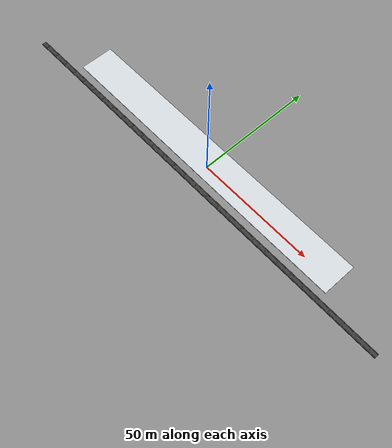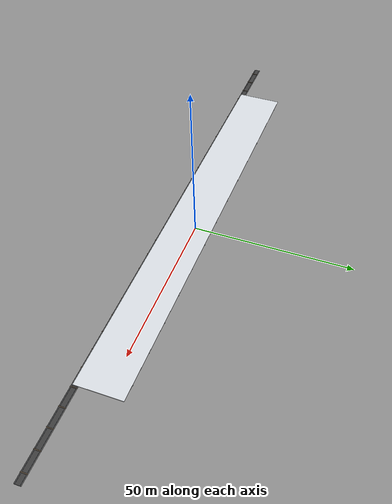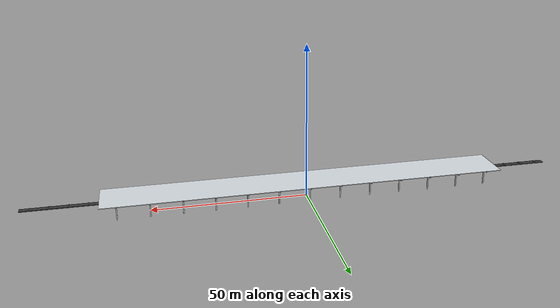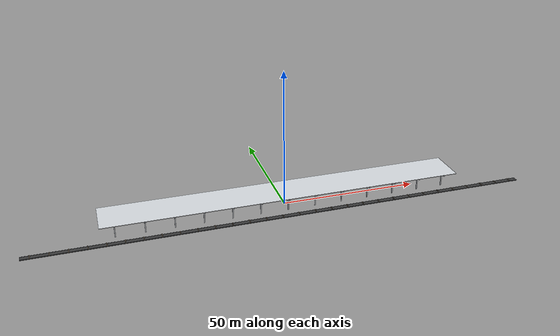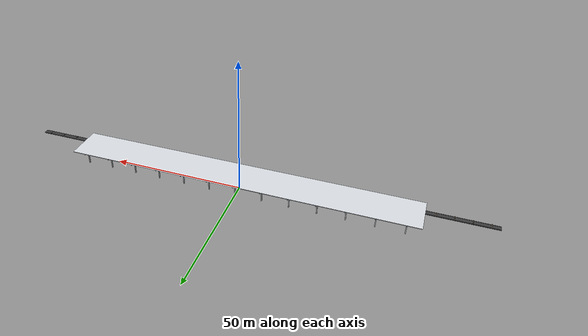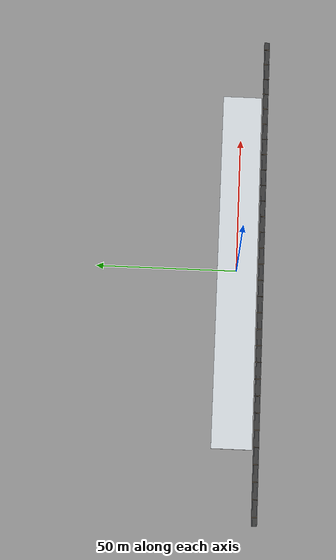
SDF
<sdf version="1.8">
 <world name="metro_station">
  <model name="track_bed_negative_y">
   <static>true</static>
   <link name="track_link_negative_y">
    <collision name="track_collision_negative_y">
     <pose>0 -8.65 0.10 0 0 0</pose>
     <geometry><box><size>180.0 2.0 0.20</size></box></geometry>
    </collision>
    <visual name="track_ballast_negative_y">
     <pose>0 -8.65 0.10 0 0 0</pose>
     <geometry><box><size>180.0 2.0 0.20</size></box></geometry>
     <material><ambient>0.16 0.16 0.16 1</ambient><diffuse>0.23 0.23 0.23 1</diffuse></material>
    </visual>
    <visual name="rail_inner_negative_y">
     <pose>0 -9.35 0.24 0 0 0</pose>
     <geometry><box><size>180.0 0.08 0.08</size></box></geometry>
     <material>
      <ambient>0.34 0.36 0.39 1</ambient>
      <diffuse>0.50 0.52 0.55 1</diffuse>
      <specular>0.8 0.8 0.8 1</specular>
     </material>
    </visual>
    <visual name="rail_outer_negative_y">
     <pose>0 -7.95 0.24 0 0 0</pose>
     <geometry><box><size>180.0 0.08 0.08</size></box></geometry>
     <material>
      <ambient>0.34 0.36 0.39 1</ambient>
      <diffuse>0.50 0.52 0.55 1</diffuse>
      <specular>0.8 0.8 0.8 1</specular>
     </material>
    </visual>
    <visual name="sleeper_negative_y_00">
     <pose>-87.0 -8.65 0.245 0 0 0</pose>
     <geometry><box><size>0.28 2.15 0.08</size></box></geometry>
     <material><ambient>0.24 0.20 0.16 1</ambient><diffuse>0.32 0.27 0.21 1</diffuse></material>
    </visual>
    <visual name="sleeper_negative_y_01">
     <pose>-81.0 -8.65 0.245 0 0 0</pose>
     <geometry><box><size>0.28 2.15 0.08</size></box></geometry>
     <material><ambient>0.24 0.20 0.16 1</ambient><diffuse>0.32 0.27 0.21 1</diffuse></material>
    </visual>
    <visual name="sleeper_negative_y_02">
     <pose>-75.0 -8.65 0.245 0 0 0</pose>
     <geometry><box><size>0.28 2.15 0.08</size></box></geometry>
     <material><ambient>0.24 0.20 0.16 1</ambient><diffuse>0.32 0.27 0.21 1</diffuse></material>
    </visual>
    <visual name="sleeper_negative_y_03">
     <pose>-69.0 -8.65 0.245 0 0 0</pose>
     <geometry><box><size>0.28 2.15 0.08</size></box></geometry>
     <material><ambient>0.24 0.20 0.16 1</ambient><diffuse>0.32 0.27 0.21 1</diffuse></material>
    </visual>
    <visual name="sleeper_negative_y_04">
     <pose>-63.0 -8.65 0.245 0 0 0</pose>
     <geometry><box><size>0.28 2.15 0.08</size></box></geometry>
     <material><ambient>0.24 0.20 0.16 1</ambient><diffuse>0.32 0.27 0.21 1</diffuse></material>
    </visual>
    <visual name="sleeper_negative_y_05">
     <pose>-57.0 -8.65 0.245 0 0 0</pose>
     <geometry><box><size>0.28 2.15 0.08</size></box></geometry>
     <material><ambient>0.24 0.20 0.16 1</ambient><diffuse>0.32 0.27 0.21 1</diffuse></material>
    </visual>
    <visual name="sleeper_negative_y_06">
     <pose>-51.0 -8.65 0.245 0 0 0</pose>
     <geometry><box><size>0.28 2.15 0.08</size></box></geometry>
     <material><ambient>0.24 0.20 0.16 1</ambient><diffuse>0.32 0.27 0.21 1</diffuse></material>
    </visual>
    <visual name="sleeper_negative_y_07">
     <pose>-45.0 -8.65 0.245 0 0 0</pose>
     <geometry><box><size>0.28 2.15 0.08</size></box></geometry>
     <material><ambient>0.24 0.20 0.16 1</ambient><diffuse>0.32 0.27 0.21 1</diffuse></material>
    </visual>
    <visual name="sleeper_negative_y_08">
     <pose>-39.0 -8.65 0.245 0 0 0</pose>
     <geometry><box><size>0.28 2.15 0.08</size></box></geometry>
     <material><ambient>0.24 0.20 0.16 1</ambient><diffuse>0.32 0.27 0.21 1</diffuse></material>
    </visual>
    <visual name="sleeper_negative_y_09">
     <pose>-33.0 -8.65 0.245 0 0 0</pose>
     <geometry><box><size>0.28 2.15 0.08</size></box></geometry>
     <material><ambient>0.24 0.20 0.16 1</ambient><diffuse>0.32 0.27 0.21 1</diffuse></material>
    </visual>
    <visual name="sleeper_negative_y_10">
     <pose>-27.0 -8.65 0.245 0 0 0</pose>
     <geometry><box><size>0.28 2.15 0.08</size></box></geometry>
     <material><ambient>0.24 0.20 0.16 1</ambient><diffuse>0.32 0.27 0.21 1</diffuse></material>
    </visual>
    <visual name="sleeper_negative_y_11">
     <pose>-21.0 -8.65 0.245 0 0 0</pose>
     <geometry><box><size>0.28 2.15 0.08</size></box></geometry>
     <material><ambient>0.24 0.20 0.16 1</ambient><diffuse>0.32 0.27 0.21 1</diffuse></material>
    </visual>
    <visual name="sleeper_negative_y_12">
     <pose>-15.0 -8.65 0.245 0 0 0</pose>
     <geometry><box><size>0.28 2.15 0.08</size></box></geometry>
     <material><ambient>0.24 0.20 0.16 1</ambient><diffuse>0.32 0.27 0.21 1</diffuse></material>
    </visual>
    <visual name="sleeper_negative_y_13">
     <pose>-9.0 -8.65 0.245 0 0 0</pose>
     <geometry><box><size>0.28 2.15 0.08</size></box></geometry>
     <material><ambient>0.24 0.20 0.16 1</ambient><diffuse>0.32 0.27 0.21 1</diffuse></material>
    </visual>
    <visual name="sleeper_negative_y_14">
     <pose>-3.0 -8.65 0.245 0 0 0</pose>
     <geometry><box><size>0.28 2.15 0.08</size></box></geometry>
     <material><ambient>0.24 0.20 0.16 1</ambient><diffuse>0.32 0.27 0.21 1</diffuse></material>
    </visual>
    <visual name="sleeper_negative_y_15">
     <pose>3.0 -8.65 0.245 0 0 0</pose>
     <geometry><box><size>0.28 2.15 0.08</size></box></geometry>
     <material><ambient>0.24 0.20 0.16 1</ambient><diffuse>0.32 0.27 0.21 1</diffuse></material>
    </visual>
    <visual name="sleeper_negative_y_16">
     <pose>9.0 -8.65 0.245 0 0 0</pose>
     <geometry><box><size>0.28 2.15 0.08</size></box></geometry>
     <material><ambient>0.24 0.20 0.16 1</ambient><diffuse>0.32 0.27 0.21 1</diffuse></material>
    </visual>
    <visual name="sleeper_negative_y_17">
     <pose>15.0 -8.65 0.245 0 0 0</pose>
     <geometry><box><size>0.28 2.15 0.08</size></box></geometry>
     <material><ambient>0.24 0.20 0.16 1</ambient><diffuse>0.32 0.27 0.21 1</diffuse></material>
    </visual>
    <visual name="sleeper_negative_y_18">
     <pose>21.0 -8.65 0.245 0 0 0</pose>
     <geometry><box><size>0.28 2.15 0.08</size></box></geometry>
     <material><ambient>0.24 0.20 0.16 1</ambient><diffuse>0.32 0.27 0.21 1</diffuse></material>
    </visual>
    <visual name="sleeper_negative_y_19">
     <pose>27.0 -8.65 0.245 0 0 0</pose>
     <geometry><box><size>0.28 2.15 0.08</size></box></geometry>
     <material><ambient>0.24 0.20 0.16 1</ambient><diffuse>0.32 0.27 0.21 1</diffuse></material>
    </visual>
    <visual name="sleeper_negative_y_20">
     <pose>33.0 -8.65 0.245 0 0 0</pose>
     <geometry><box><size>0.28 2.15 0.08</size></box></geometry>
     <material><ambient>0.24 0.20 0.16 1</ambient><diffuse>0.32 0.27 0.21 1</diffuse></material>
    </visual>
    <visual name="sleeper_negative_y_21">
     <pose>39.0 -8.65 0.245 0 0 0</pose>
     <geometry><box><size>0.28 2.15 0.08</size></box></geometry>
     <material><ambient>0.24 0.20 0.16 1</ambient><diffuse>0.32 0.27 0.21 1</diffuse></material>
    </visual>
    <visual name="sleeper_negative_y_22">
     <pose>45.0 -8.65 0.245 0 0 0</pose>
     <geometry><box><size>0.28 2.15 0.08</size></box></geometry>
     <material><ambient>0.24 0.20 0.16 1</ambient><diffuse>0.32 0.27 0.21 1</diffuse></material>
    </visual>
    <visual name="sleeper_negative_y_23">
     <pose>51.0 -8.65 0.245 0 0 0</pose>
     <geometry><box><size>0.28 2.15 0.08</size></box></geometry>
     <material><ambient>0.24 0.20 0.16 1</ambient><diffuse>0.32 0.27 0.21 1</diffuse></material>
    </visual>
    <visual name="sleeper_negative_y_24">
     <pose>57.0 -8.65 0.245 0 0 0</pose>
     <geometry><box><size>0.28 2.15 0.08</size></box></geometry>
     <material><ambient>0.24 0.20 0.16 1</ambient><diffuse>0.32 0.27 0.21 1</diffuse></material>
    </visual>
    <visual name="sleeper_negative_y_25">
     <pose>63.0 -8.65 0.245 0 0 0</pose>
     <geometry><box><size>0.28 2.15 0.08</size></box></geometry>
     <material><ambient>0.24 0.20 0.16 1</ambient><diffuse>0.32 0.27 0.21 1</diffuse></material>
    </visual>
    <visual name="sleeper_negative_y_26">
     <pose>69.0 -8.65 0.245 0 0 0</pose>
     <geometry><box><size>0.28 2.15 0.08</size></box></geometry>
     <material><ambient>0.24 0.20 0.16 1</ambient><diffuse>0.32 0.27 0.21 1</diffuse></material>
    </visual>
    <visual name="sleeper_negative_y_27">
     <pose>75.0 -8.65 0.245 0 0 0</pose>
     <geometry><box><size>0.28 2.15 0.08</size></box></geometry>
     <material><ambient>0.24 0.20 0.16 1</ambient><diffuse>0.32 0.27 0.21 1</diffuse></material>
    </visual>
    <visual name="sleeper_negative_y_28">
     <pose>81.0 -8.65 0.245 0 0 0</pose>
     <geometry><box><size>0.28 2.15 0.08</size></box></geometry>
     <material><ambient>0.24 0.20 0.16 1</ambient><diffuse>0.32 0.27 0.21 1</diffuse></material>
    </visual>
    <visual name="sleeper_negative_y_29">
     <pose>87.0 -8.65 0.245 0 0 0</pose>
     <geometry><box><size>0.28 2.15 0.08</size></box></geometry>
     <material><ambient>0.24 0.20 0.16 1</ambient><diffuse>0.32 0.27 0.21 1</diffuse></material>
    </visual>
   </link>
  </model>
  <model name="station_structure">
   <static>true</static>
   <link name="structure_link">
    <visual name="station_ceiling">
     <pose>0 0 5.48 0 0 0</pose>
     <geometry><box><size>130.0 14.0 0.20</size></box></geometry>
     <material><ambient>0.70 0.72 0.74 1</ambient><diffuse>0.82 0.84 0.86 1</diffuse></material>
    </visual>
    <visual name="roof_beam_00">
     <pose>-60 0 5.18 0 0 0</pose>
     <geometry><box><size>0.35 14.0 0.25</size></box></geometry>
     <material><ambient>0.42 0.44 0.46 1</ambient><diffuse>0.55 0.57 0.59 1</diffuse></material>
    </visual>
    <visual name="column_00_n">
     <pose>-60 -4.8 2.80 0 0 0</pose>
     <geometry><box><size>0.35 0.35 5.00</size></box></geometry>
     <material><ambient>0.60 0.62 0.64 1</ambient><diffuse>0.74 0.76 0.78 1</diffuse></material>
    </visual>
    <visual name="column_00_p">
     <pose>-60 4.8 2.80 0 0 0</pose>
     <geometry><box><size>0.35 0.35 5.00</size></box></geometry>
     <material><ambient>0.60 0.62 0.64 1</ambient><diffuse>0.74 0.76 0.78 1</diffuse></material>
    </visual>
    <visual name="roof_beam_01">
     <pose>-50 0 5.18 0 0 0</pose>
     <geometry><box><size>0.35 14.0 0.25</size></box></geometry>
     <material><ambient>0.42 0.44 0.46 1</ambient><diffuse>0.55 0.57 0.59 1</diffuse></material>
    </visual>
    <visual name="column_01_n">
     <pose>-50 -4.8 2.80 0 0 0</pose>
     <geometry><box><size>0.35 0.35 5.00</size></box></geometry>
     <material><ambient>0.60 0.62 0.64 1</ambient><diffuse>0.74 0.76 0.78 1</diffuse></material>
    </visual>
    <visual name="column_01_p">
     <pose>-50 4.8 2.80 0 0 0</pose>
     <geometry><box><size>0.35 0.35 5.00</size></box></geometry>
     <material><ambient>0.60 0.62 0.64 1</ambient><diffuse>0.74 0.76 0.78 1</diffuse></material>
    </visual>
    <visual name="roof_beam_02">
     <pose>-40 0 5.18 0 0 0</pose>
     <geometry><box><size>0.35 14.0 0.25</size></box></geometry>
     <material><ambient>0.42 0.44 0.46 1</ambient><diffuse>0.55 0.57 0.59 1</diffuse></material>
    </visual>
    <visual name="column_02_n">
     <pose>-40 -4.8 2.80 0 0 0</pose>
     <geometry><box><size>0.35 0.35 5.00</size></box></geometry>
     <material><ambient>0.60 0.62 0.64 1</ambient><diffuse>0.74 0.76 0.78 1</diffuse></material>
    </visual>
    <visual name="column_02_p">
     <pose>-40 4.8 2.80 0 0 0</pose>
     <geometry><box><size>0.35 0.35 5.00</size></box></geometry>
     <material><ambient>0.60 0.62 0.64 1</ambient><diffuse>0.74 0.76 0.78 1</diffuse></material>
    </visual>
    <visual name="roof_beam_03">
     <pose>-30 0 5.18 0 0 0</pose>
     <geometry><box><size>0.35 14.0 0.25</size></box></geometry>
     <material><ambient>0.42 0.44 0.46 1</ambient><diffuse>0.55 0.57 0.59 1</diffuse></material>
    </visual>
    <visual name="column_03_n">
     <pose>-30 -4.8 2.80 0 0 0</pose>
     <geometry><box><size>0.35 0.35 5.00</size></box></geometry>
     <material><ambient>0.60 0.62 0.64 1</ambient><diffuse>0.74 0.76 0.78 1</diffuse></material>
    </visual>
    <visual name="column_03_p">
     <pose>-30 4.8 2.80 0 0 0</pose>
     <geometry><box><size>0.35 0.35 5.00</size></box></geometry>
     <material><ambient>0.60 0.62 0.64 1</ambient><diffuse>0.74 0.76 0.78 1</diffuse></material>
    </visual>
    <visual name="roof_beam_04">
     <pose>-20 0 5.18 0 0 0</pose>
     <geometry><box><size>0.35 14.0 0.25</size></box></geometry>
     <material><ambient>0.42 0.44 0.46 1</ambient><diffuse>0.55 0.57 0.59 1</diffuse></material>
    </visual>
    <visual name="column_04_n">
     <pose>-20 -4.8 2.80 0 0 0</pose>
     <geometry><box><size>0.35 0.35 5.00</size></box></geometry>
     <material><ambient>0.60 0.62 0.64 1</ambient><diffuse>0.74 0.76 0.78 1</diffuse></material>
    </visual>
    <visual name="column_04_p">
     <pose>-20 4.8 2.80 0 0 0</pose>
     <geometry><box><size>0.35 0.35 5.00</size></box></geometry>
     <material><ambient>0.60 0.62 0.64 1</ambient><diffuse>0.74 0.76 0.78 1</diffuse></material>
    </visual>
    <visual name="roof_beam_05">
     <pose>-10 0 5.18 0 0 0</pose>
     <geometry><box><size>0.35 14.0 0.25</size></box></geometry>
     <material><ambient>0.42 0.44 0.46 1</ambient><diffuse>0.55 0.57 0.59 1</diffuse></material>
    </visual>
    <visual name="column_05_n">
     <pose>-10 -4.8 2.80 0 0 0</pose>
     <geometry><box><size>0.35 0.35 5.00</size></box></geometry>
     <material><ambient>0.60 0.62 0.64 1</ambient><diffuse>0.74 0.76 0.78 1</diffuse></material>
    </visual>
    <visual name="column_05_p">
     <pose>-10 4.8 2.80 0 0 0</pose>
     <geometry><box><size>0.35 0.35 5.00</size></box></geometry>
     <material><ambient>0.60 0.62 0.64 1</ambient><diffuse>0.74 0.76 0.78 1</diffuse></material>
    </visual>
    <visual name="roof_beam_06">
     <pose>0 0 5.18 0 0 0</pose>
     <geometry><box><size>0.35 14.0 0.25</size></box></geometry>
     <material><ambient>0.42 0.44 0.46 1</ambient><diffuse>0.55 0.57 0.59 1</diffuse></material>
    </visual>
    <visual name="column_06_n">
     <pose>0 -4.8 2.80 0 0 0</pose>
     <geometry><box><size>0.35 0.35 5.00</size></box></geometry>
     <material><ambient>0.60 0.62 0.64 1</ambient><diffuse>0.74 0.76 0.78 1</diffuse></material>
    </visual>
    <visual name="column_06_p">
     <pose>0 4.8 2.80 0 0 0</pose>
     <geometry><box><size>0.35 0.35 5.00</size></box></geometry>
     <material><ambient>0.60 0.62 0.64 1</ambient><diffuse>0.74 0.76 0.78 1</diffuse></material>
    </visual>
    <visual name="roof_beam_07">
     <pose>10 0 5.18 0 0 0</pose>
     <geometry><box><size>0.35 14.0 0.25</size></box></geometry>
     <material><ambient>0.42 0.44 0.46 1</ambient><diffuse>0.55 0.57 0.59 1</diffuse></material>
    </visual>
    <visual name="column_07_n">
     <pose>10 -4.8 2.80 0 0 0</pose>
     <geometry><box><size>0.35 0.35 5.00</size></box></geometry>
     <material><ambient>0.60 0.62 0.64 1</ambient><diffuse>0.74 0.76 0.78 1</diffuse></material>
    </visual>
    <visual name="column_07_p">
     <pose>10 4.8 2.80 0 0 0</pose>
     <geometry><box><size>0.35 0.35 5.00</size></box></geometry>
     <material><ambient>0.60 0.62 0.64 1</ambient><diffuse>0.74 0.76 0.78 1</diffuse></material>
    </visual>
    <visual name="roof_beam_08">
     <pose>20 0 5.18 0 0 0</pose>
     <geometry><box><size>0.35 14.0 0.25</size></box></geometry>
     <material><ambient>0.42 0.44 0.46 1</ambient><diffuse>0.55 0.57 0.59 1</diffuse></material>
    </visual>
    <visual name="column_08_n">
     <pose>20 -4.8 2.80 0 0 0</pose>
     <geometry><box><size>0.35 0.35 5.00</size></box></geometry>
     <material><ambient>0.60 0.62 0.64 1</ambient><diffuse>0.74 0.76 0.78 1</diffuse></material>
    </visual>
    <visual name="column_08_p">
     <pose>20 4.8 2.80 0 0 0</pose>
     <geometry><box><size>0.35 0.35 5.00</size></box></geometry>
     <material><ambient>0.60 0.62 0.64 1</ambient><diffuse>0.74 0.76 0.78 1</diffuse></material>
    </visual>
    <visual name="roof_beam_09">
     <pose>30 0 5.18 0 0 0</pose>
     <geometry><box><size>0.35 14.0 0.25</size></box></geometry>
     <material><ambient>0.42 0.44 0.46 1</ambient><diffuse>0.55 0.57 0.59 1</diffuse></material>
    </visual>
    <visual name="column_09_n">
     <pose>30 -4.8 2.80 0 0 0</pose>
     <geometry><box><size>0.35 0.35 5.00</size></box></geometry>
     <material><ambient>0.60 0.62 0.64 1</ambient><diffuse>0.74 0.76 0.78 1</diffuse></material>
    </visual>
    <visual name="column_09_p">
     <pose>30 4.8 2.80 0 0 0</pose>
     <geometry><box><size>0.35 0.35 5.00</size></box></geometry>
     <material><ambient>0.60 0.62 0.64 1</ambient><diffuse>0.74 0.76 0.78 1</diffuse></material>
    </visual>
    <visual name="roof_beam_10">
     <pose>40 0 5.18 0 0 0</pose>
     <geometry><box><size>0.35 14.0 0.25</size></box></geometry>
     <material><ambient>0.42 0.44 0.46 1</ambient><diffuse>0.55 0.57 0.59 1</diffuse></material>
    </visual>
    <visual name="column_10_n">
     <pose>40 -4.8 2.80 0 0 0</pose>
     <geometry><box><size>0.35 0.35 5.00</size></box></geometry>
     <material><ambient>0.60 0.62 0.64 1</ambient><diffuse>0.74 0.76 0.78 1</diffuse></material>
    </visual>
    <visual name="column_10_p">
     <pose>40 4.8 2.80 0 0 0</pose>
     <geometry><box><size>0.35 0.35 5.00</size></box></geometry>
     <material><ambient>0.60 0.62 0.64 1</ambient><diffuse>0.74 0.76 0.78 1</diffuse></material>
    </visual>
    <visual name="roof_beam_11">
     <pose>50 0 5.18 0 0 0</pose>
     <geometry><box><size>0.35 14.0 0.25</size></box></geometry>
     <material><ambient>0.42 0.44 0.46 1</ambient><diffuse>0.55 0.57 0.59 1</diffuse></material>
    </visual>
    <visual name="column_11_n">
     <pose>50 -4.8 2.80 0 0 0</pose>
     <geometry><box><size>0.35 0.35 5.00</size></box></geometry>
     <material><ambient>0.60 0.62 0.64 1</ambient><diffuse>0.74 0.76 0.78 1</diffuse></material>
    </visual>
    <visual name="column_11_p">
     <pose>50 4.8 2.80 0 0 0</pose>
     <geometry><box><size>0.35 0.35 5.00</size></box></geometry>
     <material><ambient>0.60 0.62 0.64 1</ambient><diffuse>0.74 0.76 0.78 1</diffuse></material>
    </visual>
    <visual name="roof_beam_12">
     <pose>60 0 5.18 0 0 0</pose>
     <geometry><box><size>0.35 14.0 0.25</size></box></geometry>
     <material><ambient>0.42 0.44 0.46 1</ambient><diffuse>0.55 0.57 0.59 1</diffuse></material>
    </visual>
    <visual name="column_12_n">
     <pose>60 -4.8 2.80 0 0 0</pose>
     <geometry><box><size>0.35 0.35 5.00</size></box></geometry>
     <material><ambient>0.60 0.62 0.64 1</ambient><diffuse>0.74 0.76 0.78 1</diffuse></material>
    </visual>
    <visual name="column_12_p">
     <pose>60 4.8 2.80 0 0 0</pose>
     <geometry><box><size>0.35 0.35 5.00</size></box></geometry>
     <material><ambient>0.60 0.62 0.64 1</ambient><diffuse>0.74 0.76 0.78 1</diffuse></material>
    </visual>
    <visual name="light_strip_0">
     <pose>0 -5.5 5.36 0 0 0</pose>
     <geometry><box><size>128.0 0.10 0.035</size></box></geometry>
     <material>
      <ambient>1.0 0.95 0.80 1</ambient>
      <diffuse>1.0 0.97 0.86 1</diffuse>
      <emissive>1.0 0.92 0.72 1</emissive>
     </material>
    </visual>
    <visual name="light_strip_1">
     <pose>0 -2.75 5.36 0 0 0</pose>
     <geometry><box><size>128.0 0.10 0.035</size></box></geometry>
     <material>
      <ambient>1.0 0.95 0.80 1</ambient>
      <diffuse>1.0 0.97 0.86 1</diffuse>
      <emissive>1.0 0.92 0.72 1</emissive>
     </material>
    </visual>
    <visual name="light_strip_2">
     <pose>0 0.0 5.36 0 0 0</pose>
     <geometry><box><size>128.0 0.10 0.035</size></box></geometry>
     <material>
      <ambient>1.0 0.95 0.80 1</ambient>
      <diffuse>1.0 0.97 0.86 1</diffuse>
      <emissive>1.0 0.92 0.72 1</emissive>
     </material>
    </visual>
    <visual name="light_strip_3">
     <pose>0 2.75 5.36 0 0 0</pose>
     <geometry><box><size>128.0 0.10 0.035</size></box></geometry>
     <material>
      <ambient>1.0 0.95 0.80 1</ambient>
      <diffuse>1.0 0.97 0.86 1</diffuse>
      <emissive>1.0 0.92 0.72 1</emissive>
     </material>
    </visual>
    <visual name="light_strip_4">
     <pose>0 5.5 5.36 0 0 0</pose>
     <geometry><box><size>128.0 0.10 0.035</size></box></geometry>
     <material>
      <ambient>1.0 0.95 0.80 1</ambient>
      <diffuse>1.0 0.97 0.86 1</diffuse>
      <emissive>1.0 0.92 0.72 1</emissive>
     </material>
    </visual>
   </link>
  </model>
 </world>
</sdf>
